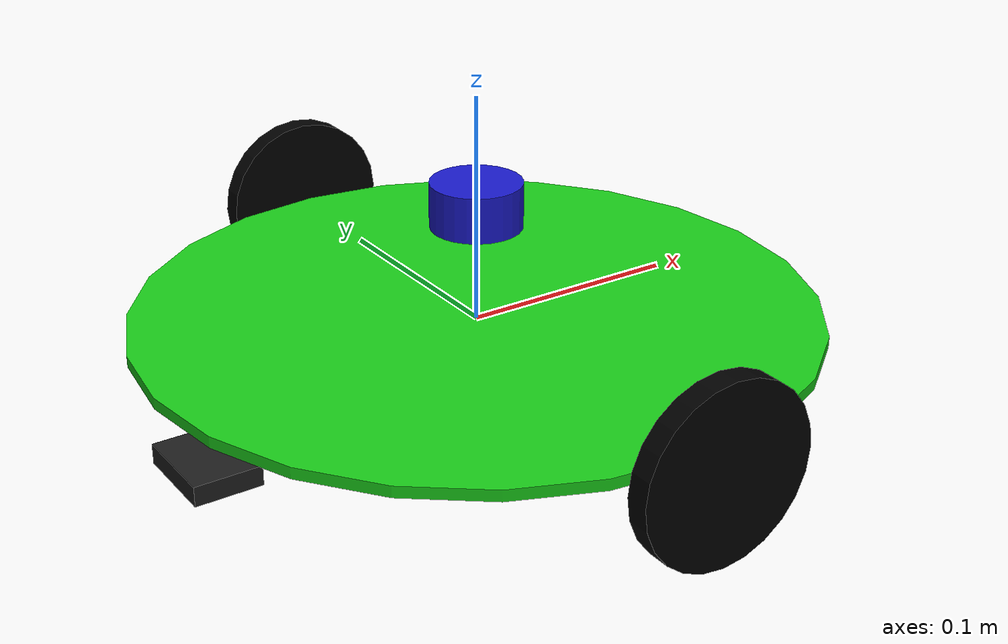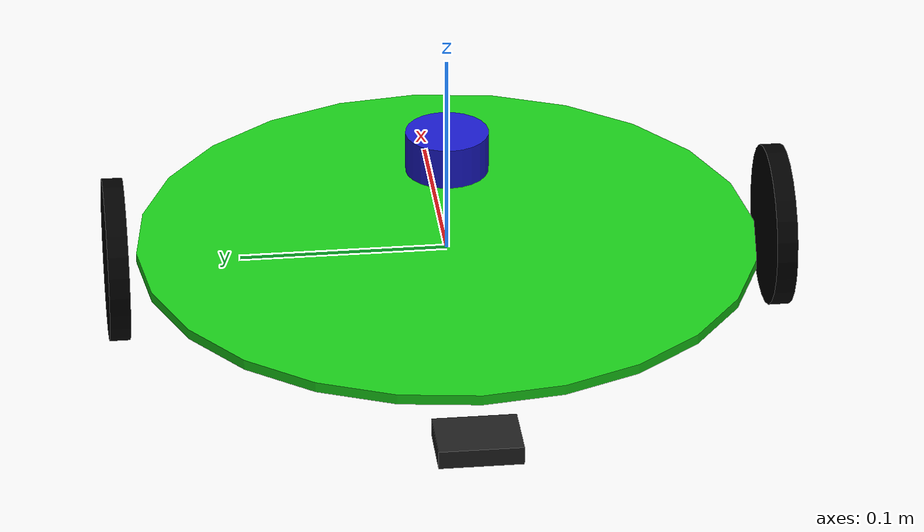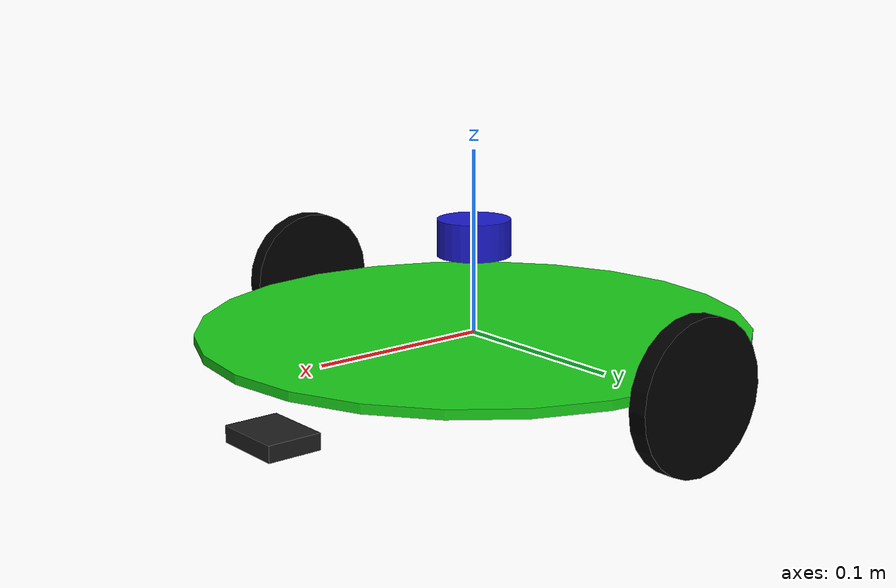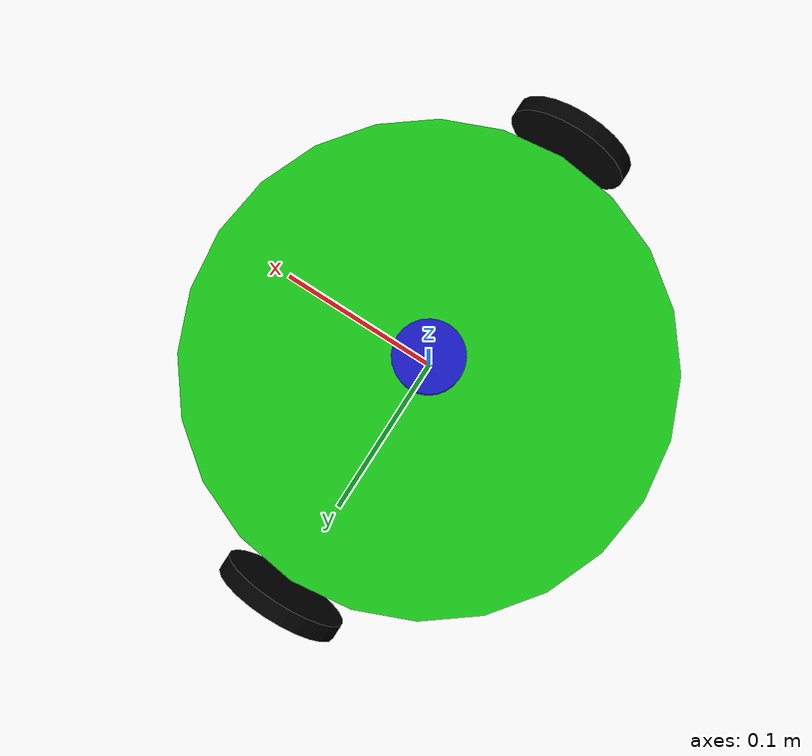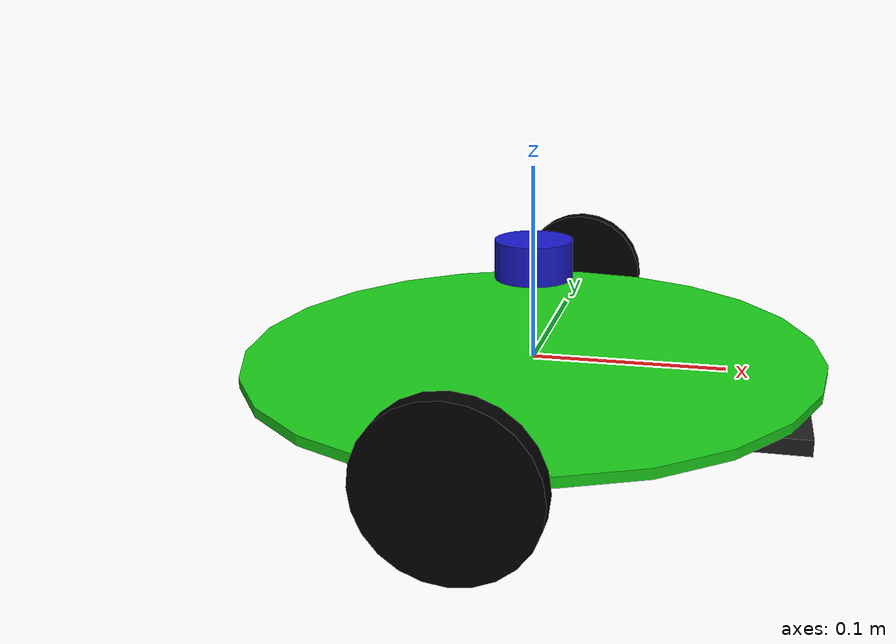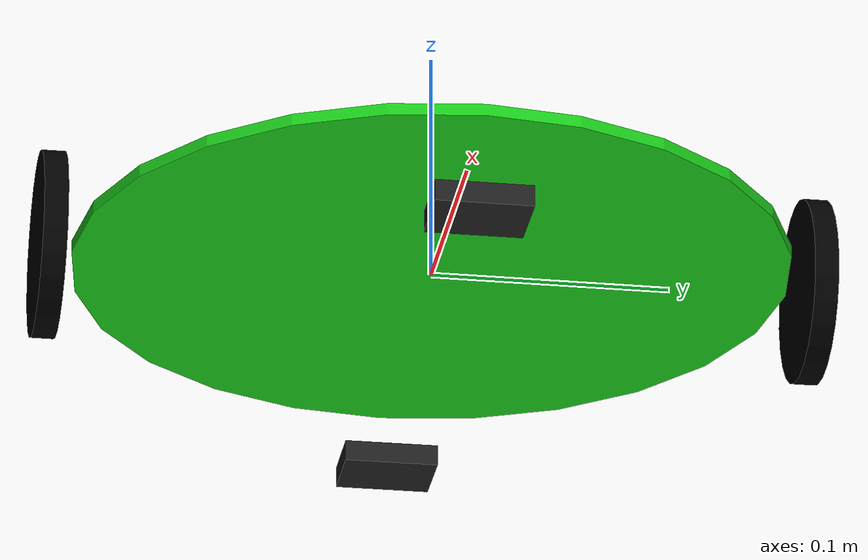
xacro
<?xml version="1.0"?>
<robot name="merakm" xmlns:xacro="http://www.ros.org/wiki/xacro">

  <xacro:include filename="$(find merakm_description)/urdf/merakm_gazebo.xacro" />
  <xacro:include filename="$(find merakm_description)/urdf/merakm_params.xacro" />
  <xacro:include filename="$(find merakm_description)/urdf/merakm_macros.xacro" />

  <material name="black">
    <color rgba="0 0 0 1"/>
  </material>

  <material name="green">
    <color rgba="0.1 0.8 0.1 1"/>
  </material>

  <material name="blue">
    <color rgba="0.1 0.1 0.8 1"/>
  </material>

  <!-- Begin - Robot description -->

  <link name="base_footprint" />

  <joint name="base_link__base_footprint" type="fixed">
    <parent link="base_footprint"/>
    <child link="base_link"/>
    <origin xyz="0.0 0.0 0.003" rpy="0 0 0"/>
  </joint>

  <xacro:m_link_cylinder name="base_link" origin_xyz="0 0 0" origin_rpy="0 0 0" color="green"
                         length="${base_len}" radius="${base_rad}" mass="${base_weight}"
                         ixx="0.01" ixy="0" ixz="0" iyy="0.01" iyz="0" izz="0.01" />

  <xacro:m_link_cylinder name="left_wheel" origin_xyz="0 0 0" origin_rpy="0 0 0" color="black"
                         length="${wheel_len}" radius="${wheel_rad}" mass="${wheel_weight}"
                         ixx="0.01" ixy="0" ixz="0" iyy="0.01" iyz="0" izz="0.01" />

  <joint name="base_link__left_wheel" type="continuous">
    <parent link="base_link"/>
    <child link="left_wheel"/>
    <origin xyz="0.0 0.16 0.0" rpy="1.5708 0 0"/>
    <axis xyz="0 0 -1"/>
  </joint>

  <xacro:m_link_cylinder name="right_wheel" origin_xyz="0 0 0" origin_rpy="0 0 0" color="black"
                         length="${wheel_len}" radius="${wheel_rad}" mass="${wheel_weight}"
                         ixx="0.01" ixy="0" ixz="0" iyy="0.01" iyz="0" izz="0.01" />

  <joint name="base_link__right_wheel" type="continuous">
    <parent link="base_link"/>
    <child link="right_wheel"/>
    <origin xyz="0.0 -0.16 0.0" rpy="1.5708 0 0"/>
    <axis xyz="0 0 -1"/>
  </joint>

  <joint name="caster_back_joint" type="fixed">
    <parent link="base_link"/>
    <child link="caster_back_link"/>
    <origin xyz="-0.13 0 -0.033" rpy="-1.57 0 0"/>
  </joint>

  <link name="caster_back_link">
    <visual>
      <origin xyz="0 0.001 0" rpy="0 0 0"/>
      <geometry>
        <box size="0.030 0.009 0.040"/>
      </geometry>
    </visual>

    <collision>
      <origin xyz="0 0.001 0" rpy="0 0 0"/>
      <geometry>
        <box size="0.030 0.009 0.040"/>
      </geometry>
    </collision>

    <inertial>
      <origin xyz="0 0 0" />
      <mass value="0.005" />
      <inertia ixx="0.001" ixy="0.0" ixz="0.0"
               iyy="0.001" iyz="0.0"
               izz="0.001" />
    </inertial>
  </link>

  <joint name="caster_front_joint" type="fixed">
    <parent link="base_link"/>
    <child link="caster_front_link"/>
    <origin xyz="0.13 0 -0.033" rpy="-1.57 0 0"/>
  </joint>

  <link name="caster_front_link">
    <visual>
      <origin xyz="0 0.001 0" rpy="0 0 0"/>
      <geometry>
        <box size="0.030 0.009 0.040"/>
      </geometry>
    </visual>

    <collision>
      <origin xyz="0 0.001 0" rpy="0 0 0"/>
      <geometry>
        <box size="0.030 0.009 0.040"/>
      </geometry>
    </collision>

    <inertial>
      <origin xyz="0 0 0" />
      <mass value="0.005" />
      <inertia ixx="0.001" ixy="0.0" ixz="0.0"
               iyy="0.001" iyz="0.0"
               izz="0.001" />
    </inertial>
  </link>

  <!-- End - Robot description -->

  <!-- Begin - Sensor description -->

  <link name="base_scan">
    <visual>
      <origin rpy="0.0 0 0" xyz="0 0 0"/>
      <geometry>
        <cylinder length="0.02" radius="0.02"/>
      </geometry>
      <material name="blue"/>
    </visual>
  </link>

  <joint name="base_link__base_scan" type="fixed">
    <parent link="base_link"/>
    <child link="base_scan"/>
    <origin xyz="0 0 0.05" rpy="0 0 0"/>
  </joint>

  <!-- End - Sensor description -->

</robot>

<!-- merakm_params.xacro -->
<robot xmlns:xacro="http://www.ros.org/wiki/xacro">

    <!-- Wheels property -->
    <xacro:property name="wheel_dia" value="0.078" />
    <xacro:property name="wheel_rad" value="${wheel_dia/2}" />
    <xacro:property name="wheel_len" value="0.010" />
    <xacro:property name="wheel_weight" value="0.1" />
    <xacro:property name="wheel_dist" value="0.4" />

    <!-- Base property -->
    <xacro:property name="base_dia" value="0.30" />
    <xacro:property name="base_rad" value="${base_dia/2}" />
    <xacro:property name="base_len" value="0.005" />
    <xacro:property name="base_weight" value="0.4" />

    <!-- Caster property -->
    <xacro:property name="caster_dia" value="0.01" />
    <xacro:property name="caster_rad" value="${caster_dia/2}" />
    <xacro:property name="caster_weight" value="0.05" />

</robot>

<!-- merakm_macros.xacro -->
<robot name="merakm" xmlns:xacro="http://www.ros.org/wiki/xacro">

  <xacro:macro name="m_link_cylinder" params="name origin_xyz origin_rpy color length radius mass ixx ixy ixz iyy iyz izz">
    <link name="${name}">
      <inertial>
        <mass value="${mass}" />
        <origin rpy="${origin_rpy}" xyz="${origin_xyz}" />
        <inertia ixx="${ixx}" ixy="${ixy}" ixz="${ixz}" iyy="${iyy}" iyz="${iyz}" izz="${izz}" />
      </inertial>
      <collision>
        <origin rpy="${origin_rpy}" xyz="${origin_xyz}" />
        <geometry>
          <cylinder length="${length}" radius="${radius}"/>
        </geometry>
      </collision>
      <visual>
        <origin rpy="${origin_rpy}" xyz="${origin_xyz}" />
        <geometry>
          <cylinder length="${length}" radius="${radius}"/>
        </geometry>
        <material name="${color}"/>
      </visual>
    </link>
  </xacro:macro>

</robot>
